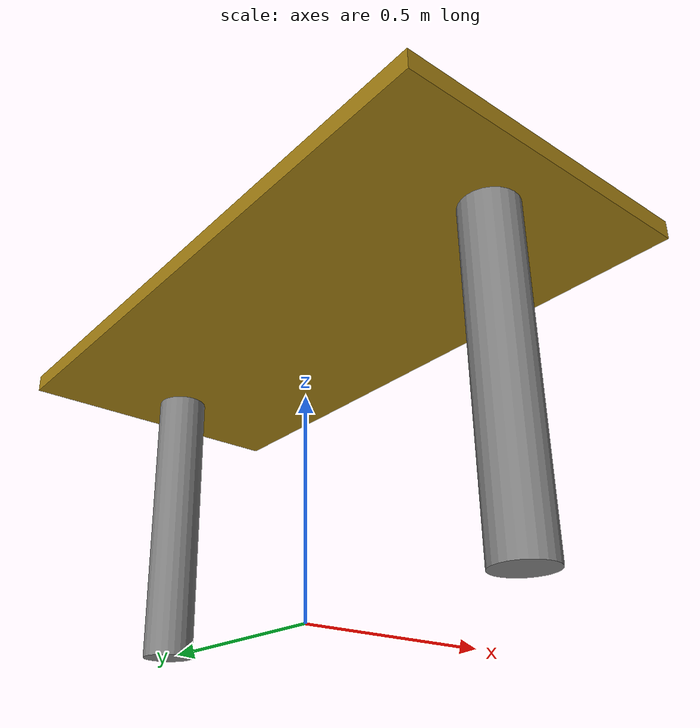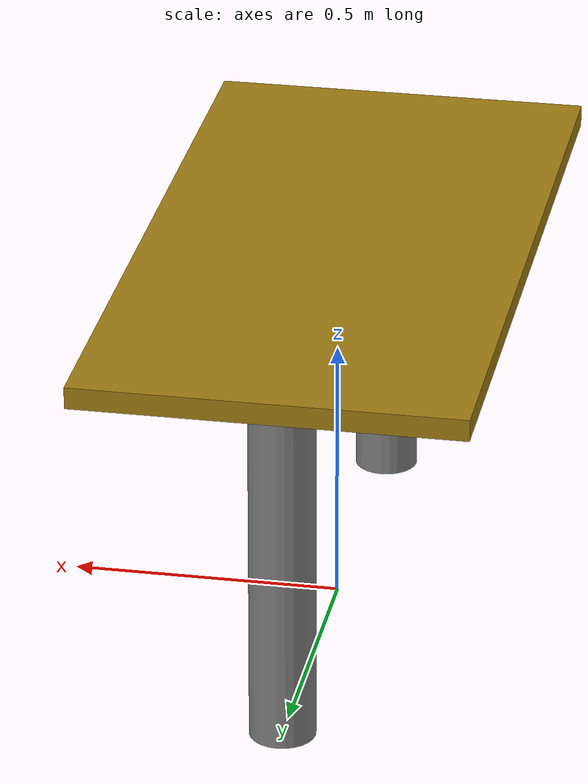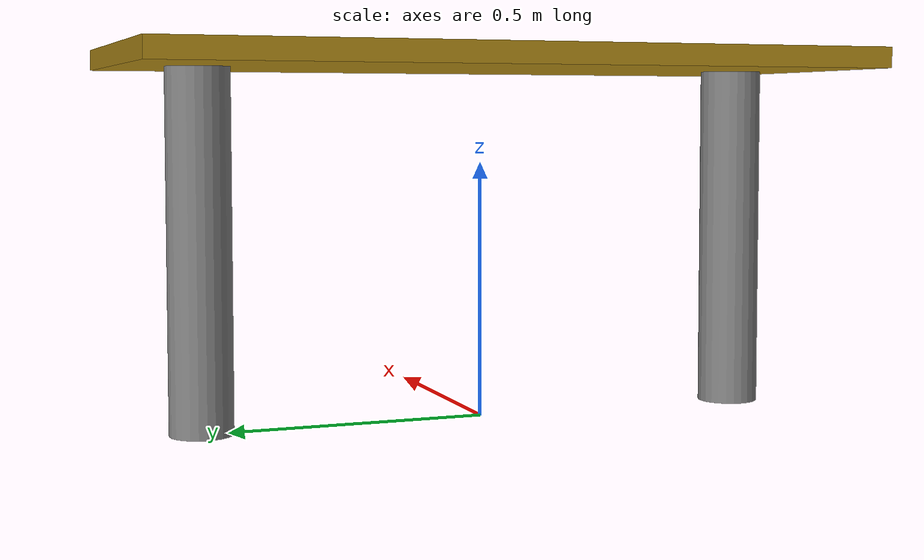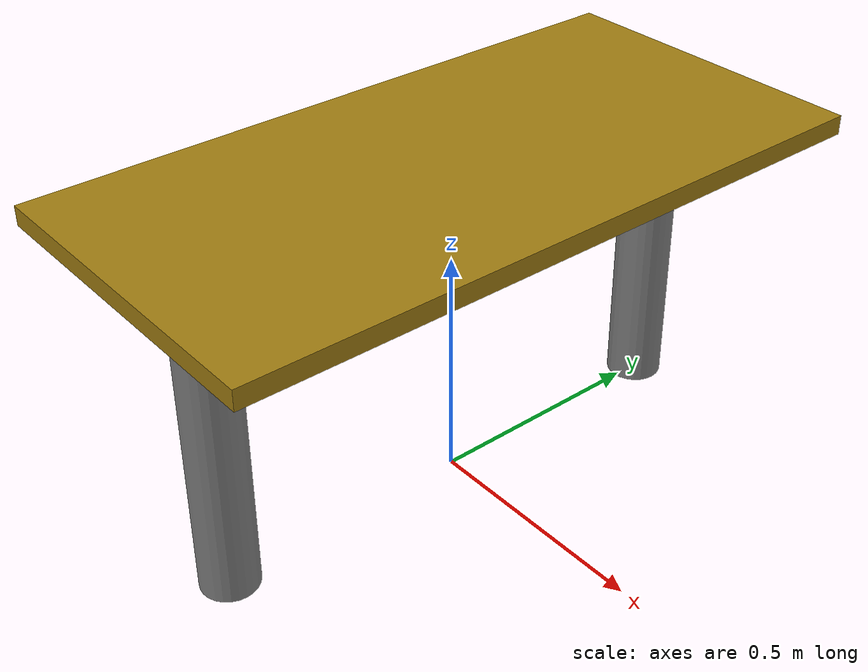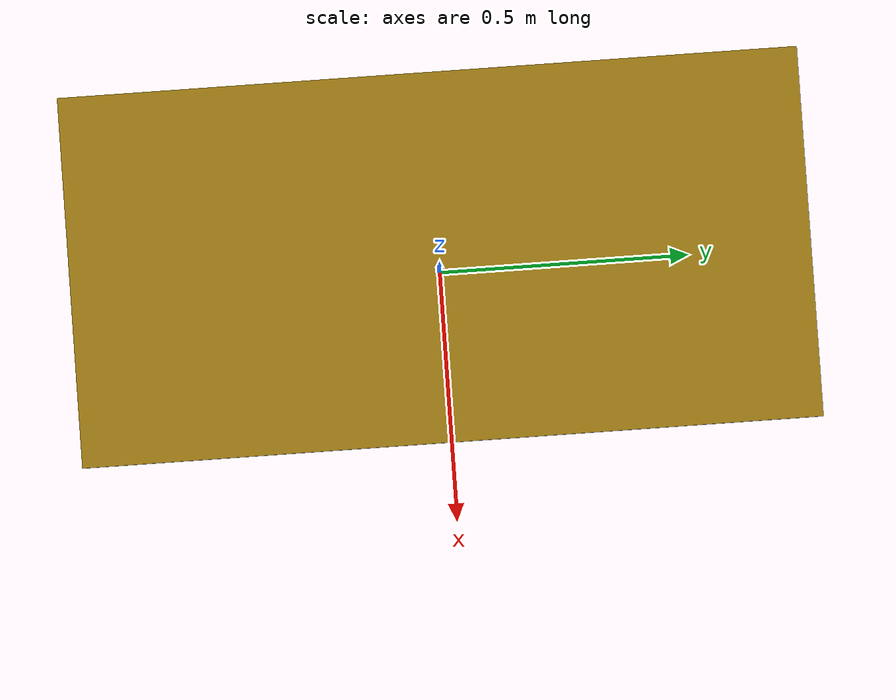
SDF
<?xml version="1.0" ?>
<sdf version="1.8">
  <model name="wooden_table">
    <link name="link">
      <inertial>
        <mass>1.0</mass>
      </inertial>

      <collision name="top">
        <pose>0.0 0.0 0.7 0.0 0.0 0.0</pose>
        <geometry>
          <box>
            <size>0.7 1.4 0.04</size>
          </box>
        </geometry>
      </collision>

      <visual name="top_v">
        <pose>0.0 0.0 0.7 0.0 0.0 0.0</pose>
        <geometry>
          <box>
            <size>0.7 1.4 0.04</size>
          </box>
        </geometry>

        <material>
          <ambient>0.63 0.49 0.07 1</ambient>
          <diffuse>0.63 0.49 0.07 1</diffuse>
        </material>
      </visual>

      <collision name="leg_left">
        <pose>0.0 0.55 0.34 0.0 0.0 0.0</pose>
        <geometry>
          <cylinder>
            <radius>0.06</radius>
            <length>0.68</length>
          </cylinder>
        </geometry>
      </collision>

      <visual name="leg_left_v">
        <pose>0.0 0.55 0.34 0.0 0.0 0.0</pose>
        <geometry>
          <cylinder>
            <radius>0.06</radius>
            <length>0.68</length>
          </cylinder>
        </geometry>

        <material>
          <ambient>0.5 0.5 0.5 1</ambient>
          <diffuse>0.5 0.5 0.5 1</diffuse>
        </material>
      </visual>

      <collision name="leg_right">
        <pose>0.0 -0.55 0.34 0.0 0.0 0.0</pose>
        <geometry>
          <cylinder>
            <radius>0.06</radius>
            <length>0.68</length>
          </cylinder>
        </geometry>
      </collision>

      <visual name="leg_right_v">
        <pose>0.0 -0.55 0.34 0.0 0.0 0.0</pose>
        <geometry>
          <cylinder>
            <radius>0.06</radius>
            <length>0.68</length>
          </cylinder>
        </geometry>

        <material>
          <ambient>0.5 0.5 0.5 1</ambient>
          <diffuse>0.5 0.5 0.5 1</diffuse>
        </material>
      </visual>
    </link>
  </model>
</sdf>
